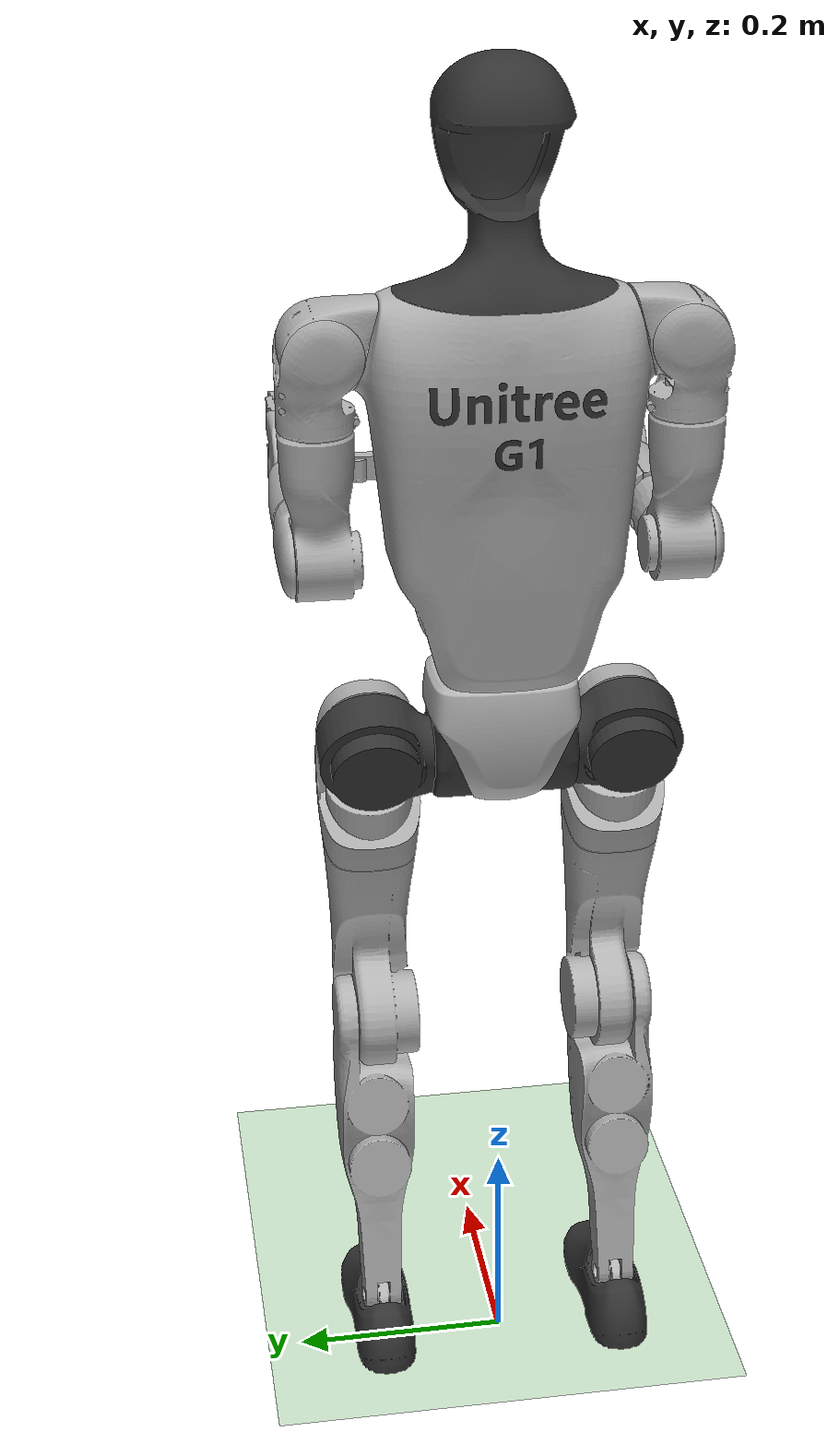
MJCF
<mujoco model="g1">
  <compiler angle="radian" meshdir="assets"/>

  <option integrator="RK4" iterations="50" solver="PGS" timestep="0.0166">
  </option>

  <size nconmax="200"/>

  <default>
    <default class="g1">
      <site rgba="1 0 0 1" size="0.01" group="5"/>
      <joint limited="true" damping="0.5" armature="0.01" frictionloss="0.1"/>
      <default class="arm_joint">
        <motor ctrlrange="-20 20" ctrllimited="true"/>
      </default>
      <default class="hand_joint">
        <motor ctrlrange="-0.7 0.7" ctrllimited="true"/>
      </default>
      <default class="visual">
        <geom group="2" type="mesh" contype="0" conaffinity="0" density="0" material="metallic"/>
      </default>
      <default class="collision">
        <geom group="3" type="mesh"/>
        <default class="foot">
          <geom type="sphere" size="0.001"/>
        </default>
      </default>
    </default>
  </default>

  <asset>
    <material name="metallic" rgba="0.7 0.7 0.7 1"/>
    <material name="black" rgba="0.2 0.2 0.2 1"/>
    <mesh file="pelvis.obj"/>
    <mesh file="pelvis_contour_link.obj"/>
    <mesh file="left_hip_pitch_link.obj"/>
    <mesh file="left_hip_roll_link.obj"/>
    <mesh file="left_hip_yaw_link.obj"/>
    <mesh file="left_knee_link.obj"/>
    <mesh file="left_ankle_pitch_link.obj"/>
    <mesh file="left_ankle_roll_link.obj"/>
    <mesh file="right_hip_pitch_link.obj"/>
    <mesh file="right_hip_roll_link.obj"/>
    <mesh file="right_hip_yaw_link.obj"/>
    <mesh file="right_knee_link.obj"/>
    <mesh file="right_ankle_pitch_link.obj"/>
    <mesh file="right_ankle_roll_link.obj"/>
    <mesh file="torso_link.obj"/>
    <mesh file="head_link.obj"/>
    <mesh file="left_shoulder_pitch_link.obj"/>
    <mesh file="left_shoulder_roll_link.obj"/>
    <mesh file="left_shoulder_yaw_link.obj"/>
    <mesh file="left_elbow_pitch_link.obj"/>
    <mesh file="left_elbow_roll_link.obj"/>
    <mesh file="right_shoulder_pitch_link.obj"/>
    <mesh file="right_shoulder_roll_link.obj"/>
    <mesh file="right_shoulder_yaw_link.obj"/>
    <mesh file="right_elbow_pitch_link.obj"/>
    <mesh file="right_elbow_roll_link.obj"/>
    <mesh file="logo_link.obj"/>
    <mesh file="left_palm_link.obj"/>
    <mesh file="left_zero_link.obj"/>
    <mesh file="left_one_link.obj"/>
    <mesh file="left_two_link.obj"/>
    <mesh file="left_three_link.obj"/>
    <mesh file="left_four_link.obj"/>
    <mesh file="left_five_link.obj"/>
    <mesh file="left_six_link.obj"/>
    <mesh file="right_palm_link.obj"/>
    <mesh file="right_zero_link.obj"/>
    <mesh file="right_one_link.obj"/>
    <mesh file="right_two_link.obj"/>
    <mesh file="right_three_link.obj"/>
    <mesh file="right_four_link.obj"/>
    <mesh file="right_five_link.obj"/>
    <mesh file="right_six_link.obj"/>
  </asset>

    <asset>
        <texture builtin="gradient" height="100" rgb1=".4 .5 .6" rgb2="0 0 0" type="skybox" width="100"/>
        <texture builtin="flat" height="1278" mark="cross" markrgb="1 1 1" name="texgeom" random="0.01" rgb1="0.8 0.6 0.4" rgb2="0.8 0.6 0.4" type="cube" width="127"/>
        <texture name="grid" type="2d" builtin="checker" rgb1=".1 .2 .3" rgb2=".2 .3 .4" width="300" height="300" mark="edge" markrgb=".2 .3 .4"/>
        <material name="MatPlane" reflectance="0.2" texrepeat="1 1" texuniform="true" texture="grid"/>
        <material name="geom" texture="texgeom" texuniform="true"/>
    </asset>
  <worldbody>
      <geom condim="3" friction="1 .1 .1" material="MatPlane" name="floor" pos="0 0 0" rgba="0.8 0.9 0.8 1" size="50 50 0.2" type="plane"/>
    <light name="spotlight" mode="targetbodycom" target="pelvis" pos="0 -6 4" cutoff="30"/>
    <body name="pelvis" pos="0 0 0.755" childclass="g1">
      <inertial pos="0 0 -0.07605" quat="1 0 -0.000405289 0" mass="2.86" diaginertia="0.0079143 0.0069837 0.0059404"/>
      <freejoint name="floating_base_joint"/>
      <light name="tracking" mode="trackcom" pos="0 0 2"/>
      <geom type="mesh" class="visual" mesh="pelvis"/>
      <geom type="mesh" class="visual" material="black" mesh="pelvis_contour_link"/>
      <body name="left_hip_pitch_link" pos="0 0.06445 -0.1027" quat="0.984807 0 -0.17365 0">
        <inertial pos="0.001962 0.049392 -0.000941" quat="0.420735 0.907025 -0.0155675 -0.00670646" mass="1.299"
          diaginertia="0.00138785 0.000955478 0.00086947"/>
        <joint name="left_hip_pitch_joint" axis="0 1 0" range="-2.35 3.05"/>
        <geom type="mesh" class="visual" material="black" mesh="left_hip_pitch_link"/>
        <body name="left_hip_roll_link" pos="0 0.0523 0">
          <inertial pos="0.024757 -0.001036 -0.086323" quat="0.977498 -0.00692636 0.210181 0.0165269" mass="1.446"
            diaginertia="0.00244106 0.00230425 0.00142899"/>
          <joint name="left_hip_roll_joint" axis="1 0 0" range="-0.26 2.53"/>
          <geom type="mesh" class="visual" mesh="left_hip_roll_link"/>
          <body name="left_hip_yaw_link" pos="0.01966 -0.0012139 -0.1241">
            <inertial pos="-0.053554 -0.011477 -0.14067" quat="0.645099 0.15885 0.202109 0.71956" mass="2.052"
              diaginertia="0.0114475 0.0107868 0.00214501"/>
            <joint name="left_hip_yaw_joint" axis="0 0 1" range="-2.75 2.75"/>
            <geom type="mesh" class="visual" mesh="left_hip_yaw_link"/>
            <body name="left_knee_link" pos="-0.078292 -0.0017335 -0.177225" quat="0.967714 0 0.252052 0">
              <inertial pos="0.005505 0.006534 -0.116629" quat="0.799234 -0.0128894 0.0354278 0.599836" mass="2.252"
                diaginertia="0.0127418 0.0124382 0.00192524"/>
              <joint name="left_knee_joint" axis="0 1 0" range="-0.33489 2.5449"/>
              <geom type="mesh" class="visual" mesh="left_knee_link"/>
              <geom size="0.015 0.075" pos="0.007 0.005 -0.15" type="cylinder" class="collision"/>
              <body name="left_ankle_pitch_link" pos="0 0.0040687 -0.30007" quat="0.99678 0 -0.0801788 0">
                <inertial pos="-0.007269 0 0.011137" quat="0.603053 0.369225 0.369225 0.603053" mass="0.074"
                  diaginertia="1.89e-05 1.40805e-05 6.9195e-06"/>
                <joint name="left_ankle_pitch_joint" axis="0 1 0" range="-0.68 0.73"/>
                <geom type="mesh" class="visual" mesh="left_ankle_pitch_link"/>
                <body name="left_ankle_roll_link" pos="0 0 -0.017558">
                  <site name="left_foot" pos="0 0 0"/>
                  <geom name="left_foot" pos="0 0 0" type="sphere" size="0.01" class="visual"/>
                  <inertial pos="0.024762 2e-05 -0.012526" quat="0.000771333 0.734476 0.000921291 0.678634" mass="0.391"
                    diaginertia="0.00110394 0.0010657 0.000149255"/>
                  <joint name="left_ankle_roll_joint" axis="1 0 0" range="-0.2618 0.2618"/>
                  <geom name="left_foot_mesh" type="mesh" class="visual" material="black" mesh="left_ankle_roll_link"/>
                  <geom name="left_foot_lheel" pos="-0.06 0.02 -0.03" class="foot"/>
                  <geom name="left_foot_rheel" pos="-0.06 -0.02 -0.03" class="foot"/>
                  <geom name="left_foot_ltoe" pos="0.13 0.02 -0.03" class="foot"/>
                  <geom name="left_foot_rtoe" pos="0.13 -0.02 -0.03" class="foot"/>
                </body>
              </body>
            </body>
          </body>
        </body>
      </body>
      <body name="right_hip_pitch_link" pos="0 -0.06445 -0.1027" quat="0.984807 0 -0.17365 0">
        <inertial pos="0.001962 -0.049392 -0.000941" quat="0.907025 0.420735 0.00670646 0.0155675" mass="1.299"
          diaginertia="0.00138785 0.000955478 0.00086947"/>
        <joint name="right_hip_pitch_joint" axis="0 1 0" range="-2.35 3.05"/>
        <geom type="mesh" class="visual" material="black" mesh="right_hip_pitch_link"/>
        <body name="right_hip_roll_link" pos="0 -0.0523 0">
          <inertial pos="0.024757 0.001036 -0.086323" quat="0.977498 0.00692636 0.210181 -0.0165269" mass="1.446"
            diaginertia="0.00244106 0.00230425 0.00142899"/>
          <joint name="right_hip_roll_joint" axis="1 0 0" range="-2.53 0.26"/>
          <geom type="mesh" class="visual" mesh="right_hip_roll_link"/>
          <body name="right_hip_yaw_link" pos="0.01966 0.0012139 -0.1241">
            <inertial pos="-0.053554 0.011477 -0.14067" quat="0.71956 0.202109 0.15885 0.645099" mass="2.052"
              diaginertia="0.0114475 0.0107868 0.00214501"/>
            <joint name="right_hip_yaw_joint" axis="0 0 1" range="-2.75 2.75"/>
            <geom type="mesh" class="visual" mesh="right_hip_yaw_link"/>
            <body name="right_knee_link" pos="-0.078292 0.0017335 -0.177225" quat="0.967714 0 0.252052 0">
              <inertial pos="0.005505 -0.006534 -0.116629" quat="0.599836 0.0354278 -0.0128894 0.799234" mass="2.252"
                diaginertia="0.0127418 0.0124382 0.00192524"/>
              <joint name="right_knee_joint" axis="0 1 0" range="-0.33489 2.5449"/>
              <geom type="mesh" class="visual" mesh="right_knee_link"/>
              <geom size="0.015 0.075" pos="0.007 -0.005 -0.15" type="cylinder" class="collision"/>
              <body name="right_ankle_pitch_link" pos="0 -0.0040687 -0.30007" quat="0.99678 0 -0.0801788 0">
                <inertial pos="-0.007269 0 0.011137" quat="0.603053 0.369225 0.369225 0.603053" mass="0.074"
                  diaginertia="1.89e-05 1.40805e-05 6.9195e-06"/>
                <joint name="right_ankle_pitch_joint" axis="0 1 0" range="-0.68 0.73"/>
                <geom type="mesh" class="visual" mesh="right_ankle_pitch_link"/>
                <body name="right_ankle_roll_link" pos="0 0 -0.017558">
                  <site name="right_foot" pos="0 0 0"/>
                  <geom name="right_foot" pos="0 0 0" type="sphere" size="0.01" class="visual"/>
                  <inertial pos="0.024762 -2e-05 -0.012526" quat="-0.000771333 0.734476 -0.000921291 0.678634"
                    mass="0.391" diaginertia="0.00110394 0.0010657 0.000149255"/>
                  <joint name="right_ankle_roll_joint" axis="1 0 0" range="-0.2618 0.2618"/>
                  <geom name="right_foot_mesh" type="mesh" class="visual" material="black" mesh="right_ankle_roll_link"/>
                  <geom name="right_foot_lheel" pos="-0.06 0.02 -0.03" class="foot"/>
                  <geom name="right_foot_rheel" pos="-0.06 -0.02 -0.03" class="foot"/>
                  <geom name="right_foot_ltoe" pos="0.13 0.02 -0.03" class="foot"/>
                  <geom name="right_foot_rtoe" pos="0.13 -0.02 -0.03" class="foot"/>
                </body>
              </body>
            </body>
          </body>
        </body>
      </body>
      <body name="torso_link">
        <inertial pos="0.00187791 0.00229457 0.208747" quat="0.999957 0.00624375 -0.00636707 -0.0026338" mass="7.52036"
          diaginertia="0.12848 0.111753 0.0350394"/>
        <site name="imu" pos="-0.04233868314 0.00166 0.152067"/>
        <site name="head" pos="0 0 0.5"/>
        <joint name="torso_joint" axis="0 0 1" range="-2.618 2.618"/>
        <geom type="mesh" class="visual" mesh="torso_link"/>
        <geom type="mesh" class="visual" material="black" mesh="head_link"/>
        <geom type="mesh" class="visual" material="black" mesh="logo_link"/>
        <body name="left_shoulder_pitch_link" pos="-0.0025 0.10396 0.25928" quat="0.990268 0.139172 0 0">
          <inertial pos="-0.001431 0.048811 0.001304" quat="0.786417 0.588396 -0.180543 0.0523639" mass="0.713"
            diaginertia="0.000466421 0.000440181 0.000410999"/>
          <joint name="left_shoulder_pitch_joint" axis="0 1 0" range="-2.9671 2.7925"/>
          <geom type="mesh" class="visual" mesh="left_shoulder_pitch_link"/>
          <body name="left_shoulder_roll_link" pos="0 0.052 0" quat="0.990268 -0.139172 0 0">
            <inertial pos="-0.003415 0.006955 -0.064598" quat="0.70683 0.0105364 0.00575207 0.707282" mass="0.642"
              diaginertia="0.000683514 0.000616029 0.000372857"/>
            <joint name="left_shoulder_roll_joint" axis="1 0 0" range="-1.5882 2.2515"/>
            <geom type="mesh" class="visual" mesh="left_shoulder_roll_link"/>
            <geom size="0.03 0.015" pos="-0.004 0.006 -0.053" type="cylinder" class="collision"/>
            <body name="left_shoulder_yaw_link" pos="-0.00354 0.0062424 -0.1032">
              <inertial pos="0.000375 -0.00444 -0.072374" quat="0.903834 -0.0374183 0.00985482 0.42613" mass="0.713"
                diaginertia="0.000977874 0.000964661 0.000379065"/>
              <joint name="left_shoulder_yaw_joint" axis="0 0 1" range="-2.618 2.618"/>
              <geom type="mesh" class="visual" mesh="left_shoulder_yaw_link"/>
              <body name="left_elbow_pitch_link" pos="0 0.00189 -0.0855">
                <inertial pos="0.064497 0.002873 0" quat="0.582347 0.582495 0.400893 0.401069" mass="0.601"
                  diaginertia="0.00049549 0.0004712 0.00025371"/>
                <joint name="left_elbow_pitch_joint" axis="0 1 0" range="-0.2268 3.4208"/>
                <geom type="mesh" class="visual" mesh="left_elbow_pitch_link"/>
                <body name="left_elbow_roll_link" pos="0.1 0 0">
                  <inertial pos="0.133814 0.00147121 0.000265832" quat="0.496781 0.497877 0.498782 0.506502"
                    mass="0.50826" diaginertia="0.00239763 0.00226639 0.000285577"/>
                  <joint name="left_elbow_roll_joint" axis="1 0 0" range="-2.0943 2.0943"/>
                  <geom type="mesh" class="visual" mesh="left_elbow_roll_link"/>
                  <geom pos="0.12 0 0" type="mesh" class="visual" mesh="left_palm_link"/>
                  <body name="left_zero_link" pos="0.17 0 0">
                    <inertial pos="-0.0260466 -0.00877511 1.08605e-05" quat="0.59241 0.381376 -0.592953 0.389884"
                      mass="0.0509893" diaginertia="8.68047e-06 7.23365e-06 4.58058e-06"/>
                    <joint name="left_zero_joint" axis="0 1 0" range="-0.523598 0.523598"/>
                    <geom type="mesh" class="visual" mesh="left_zero_link"/>
                    <site name="left_palm" pos="0 0 0"/>
                    <geom name="left_hand" pos="0 0 0" type="sphere" size="0.01" class="visual"/>
                    <body name="left_one_link" pos="-0.026525 -0.0188 -5e-05">
                      <inertial pos="-0.00181538 -0.0327057 -0.000185871" quat="0.701646 0.698199 0.0817825 -0.116289"
                        mass="0.047762" diaginertia="8.03051e-06 7.8455e-06 3.65282e-06"/>
                      <joint name="left_one_joint" axis="0 0 1" range="-1 1.2"/>
                      <geom type="mesh" class="visual" mesh="left_one_link"/>
                      <geom size="0.01 0.015 0.01" pos="-0.001 -0.032 0" type="box" class="collision"/>
                      <body name="left_two_link" pos="0 -0.0431 0">
                        <inertial pos="-0.00135257 -0.0237591 -0.000119669"
                          quat="0.717995 0.695316 -0.0180122 -0.0263741" mass="0.0138584"
                          diaginertia="2.55338e-06 2.04399e-06 9.3995e-07"/>
                        <joint name="left_two_joint" axis="0 0 1" range="0 1.84"/>
                        <geom type="mesh" class="visual" mesh="left_two_link"/>
                      </body>
                    </body>
                  </body>
                  <body name="left_three_link" pos="0.205 0.004 0.02395">
                    <inertial pos="0.0362561 -0.0015725 0.000269899" quat="0.540443 0.459072 0.5397 0.45376"
                      mass="0.0488469" diaginertia="8.91742e-06 8.64873e-06 3.8319e-06"/>
                    <joint name="left_three_joint" axis="0 0 1" range="-1.84 0.3"/>
                    <geom type="mesh" class="visual" mesh="left_three_link"/>
                    <body name="left_four_link" pos="0.0471 -0.0036 0">
                      <inertial pos="0.0237591 0.00135257 0.000119669" quat="0.478926 0.48905 0.526348 0.504399"
                        mass="0.0138584" diaginertia="2.55338e-06 2.04399e-06 9.3995e-07"/>
                      <joint name="left_four_joint" axis="0 0 1" range="-1.84 0"/>
                      <geom type="mesh" class="visual" mesh="left_four_link"/>
                    </body>
                  </body>
                  <body name="left_five_link" pos="0.205 0.004 -0.02395">
                    <inertial pos="0.0362561 -0.0015725 0.000269899" quat="0.540443 0.459072 0.5397 0.45376"
                      mass="0.0488469" diaginertia="8.91742e-06 8.64873e-06 3.8319e-06"/>
                    <joint name="left_five_joint" axis="0 0 1" range="-1.84 0.3"/>
                    <geom type="mesh" class="visual" mesh="left_five_link"/>
                    <body name="left_six_link" pos="0.0471 -0.0036 0">
                      <inertial pos="0.0237591 0.00135257 0.000119669" quat="0.478926 0.48905 0.526348 0.504399"
                        mass="0.0138584" diaginertia="2.55338e-06 2.04399e-06 9.3995e-07"/>
                      <joint name="left_six_joint" axis="0 0 1" range="-1.84 0"/>
                      <geom type="mesh" class="visual" mesh="left_six_link"/>
                    </body>
                  </body>
                </body>
              </body>
            </body>
          </body>
        </body>
        <body name="right_shoulder_pitch_link" pos="-0.0025 -0.10396 0.25928" quat="0.990268 -0.139172 0 0">
          <inertial pos="-0.001431 -0.048811 0.001304" quat="0.588396 0.786417 -0.0523639 0.180543" mass="0.713"
            diaginertia="0.000466421 0.000440181 0.000410999"/>
          <joint name="right_shoulder_pitch_joint" axis="0 1 0" range="-2.9671 2.7925"/>
          <geom type="mesh" class="visual" mesh="right_shoulder_pitch_link"/>
          <body name="right_shoulder_roll_link" pos="0 -0.052 0" quat="0.990268 0.139172 0 0">
            <inertial pos="-0.003415 -0.006955 -0.064598" quat="0.707282 0.00575207 0.0105364 0.70683" mass="0.642"
              diaginertia="0.000683514 0.000616029 0.000372857"/>
            <joint name="right_shoulder_roll_joint" axis="1 0 0" range="-2.2515 1.5882"/>
            <geom type="mesh" class="visual" mesh="right_shoulder_roll_link"/>
            <geom size="0.03 0.015" pos="-0.004 -0.006 -0.053" type="cylinder" class="collision"/>
            <body name="right_shoulder_yaw_link" pos="-0.00354 -0.0062424 -0.1032">
              <inertial pos="0.000375 0.00444 -0.072374" quat="0.42613 0.00985482 -0.0374183 0.903834" mass="0.713"
                diaginertia="0.000977874 0.000964661 0.000379065"/>
              <joint name="right_shoulder_yaw_joint" axis="0 0 1" range="-2.618 2.618"/>
              <geom type="mesh" class="visual" mesh="right_shoulder_yaw_link"/>
              <body name="right_elbow_pitch_link" pos="0 -0.00189 -0.0855">
                <inertial pos="0.064497 -0.002873 0" quat="0.401069 0.400893 0.582495 0.582347" mass="0.601"
                  diaginertia="0.00049549 0.0004712 0.00025371"/>
                <joint name="right_elbow_pitch_joint" axis="0 1 0" range="-0.2268 3.4208"/>
                <geom type="mesh" class="visual" mesh="right_elbow_pitch_link"/>
                <body name="right_elbow_roll_link" pos="0.1 0 0">
                  <inertial pos="0.133814 -0.00147121 0.000265832" quat="0.506502 0.498782 0.497877 0.496781"
                    mass="0.50826" diaginertia="0.00239763 0.00226639 0.000285577"/>
                  <joint name="right_elbow_roll_joint" axis="1 0 0" range="-2.0943 2.0943"/>
                  <geom type="mesh" class="visual" mesh="right_elbow_roll_link"/>
                  <geom pos="0.12 0 0" type="mesh" class="visual" mesh="right_palm_link"/>
                  <body name="right_zero_link" pos="0.17 0 0">
                    <inertial pos="-0.0260466 0.00877511 1.08605e-05" quat="0.381376 0.59241 -0.389884 0.592953"
                      mass="0.0509893" diaginertia="8.68047e-06 7.23365e-06 4.58058e-06"/>
                    <joint name="right_zero_joint" axis="0 1 0" range="-0.523598 0.523598"/>
                    <geom type="mesh" class="visual" mesh="right_zero_link"/>
                    <site name="right_palm" pos="0 0 0"/>
                    <geom name="right_hand" pos="0 0 0" type="sphere" size="0.01" class="visual"/>
                    <body name="right_one_link" pos="-0.026525 0.0188 -5e-05">
                      <inertial pos="-0.00181538 0.0327057 -0.000185871" quat="0.698199 0.701646 0.116289 -0.0817825"
                        mass="0.047762" diaginertia="8.03051e-06 7.8455e-06 3.65282e-06"/>
                      <joint name="right_one_joint" axis="0 0 1" range="-1.2 1"/>
                      <geom type="mesh" class="visual" mesh="right_one_link"/>
                      <geom size="0.01 0.015 0.01" pos="-0.001 0.032 0" type="box" class="collision"/>
                      <body name="right_two_link" pos="0 0.0431 0">
                        <inertial pos="-0.00135257 0.0237591 -0.000119669" quat="0.695316 0.717995 0.0263741 0.0180122"
                          mass="0.0138584" diaginertia="2.55338e-06 2.04399e-06 9.3995e-07"/>
                        <joint name="right_two_joint" axis="0 0 1" range="-1.84 0"/>
                        <geom type="mesh" class="visual" mesh="right_two_link"/>
                      </body>
                    </body>
                  </body>
                  <body name="right_three_link" pos="0.205 -0.004 0.02395">
                    <inertial pos="0.0362561 0.0015725 0.000269899" quat="0.45376 0.5397 0.459072 0.540443"
                      mass="0.0488469" diaginertia="8.91742e-06 8.64873e-06 3.8319e-06"/>
                    <joint name="right_three_joint" axis="0 0 1" range="-0.3 1.84"/>
                    <geom type="mesh" class="visual" mesh="right_three_link"/>
                    <body name="right_four_link" pos="0.0471 0.0036 0">
                      <inertial pos="0.0237591 -0.00135257 0.000119669" quat="0.504399 0.526348 0.48905 0.478926"
                        mass="0.0138584" diaginertia="2.55338e-06 2.04399e-06 9.3995e-07"/>
                      <joint name="right_four_joint" axis="0 0 1" range="0 1.84"/>
                      <geom type="mesh" class="visual" mesh="right_four_link"/>
                    </body>
                  </body>
                  <body name="right_five_link" pos="0.205 -0.004 -0.02395">
                    <inertial pos="0.0362561 0.0015725 0.000269899" quat="0.45376 0.5397 0.459072 0.540443"
                      mass="0.0488469" diaginertia="8.91742e-06 8.64873e-06 3.8319e-06"/>
                    <joint name="right_five_joint" axis="0 0 1" range="-0.3 1.84"/>
                    <geom type="mesh" class="visual" mesh="right_five_link"/>
                    <body name="right_six_link" pos="0.0471 0.0036 0">
                      <inertial pos="0.0237591 -0.00135257 0.000119669" quat="0.504399 0.526348 0.48905 0.478926"
                        mass="0.0138584" diaginertia="2.55338e-06 2.04399e-06 9.3995e-07"/>
                      <joint name="right_six_joint" axis="0 0 1" range="0 1.84"/>
                      <geom type="mesh" class="visual" mesh="right_six_link"/>
                    </body>
                  </body>
                </body>
              </body>
            </body>
          </body>
        </body>
      </body>
    </body>
  </worldbody>

  <actuator>
    <motor class="g1" name="left_hip_pitch_joint" joint="left_hip_pitch_joint" ctrlrange="-88 88" ctrllimited="true"/>
    <motor class="g1" name="left_hip_roll_joint" joint="left_hip_roll_joint" ctrlrange="-88 88" ctrllimited="true"/>
    <motor class="g1" name="left_hip_yaw_joint" joint="left_hip_yaw_joint" ctrlrange="-88 88" ctrllimited="true"/>
    <motor class="g1" name="left_knee_joint" joint="left_knee_joint" ctrlrange="-139 139" ctrllimited="true"/>
    <motor class="g1" name="left_ankle_pitch_joint" joint="left_ankle_pitch_joint" ctrlrange="-40 40" ctrllimited="true"/>
    <motor class="g1" name="left_ankle_roll_joint" joint="left_ankle_roll_joint" ctrlrange="-40 40" ctrllimited="true"/>

    <motor class="g1" name="right_hip_pitch_joint" joint="right_hip_pitch_joint" ctrlrange="-88 88" ctrllimited="true"/>
    <motor class="g1" name="right_hip_roll_joint" joint="right_hip_roll_joint" ctrlrange="-88 88" ctrllimited="true"/>
    <motor class="g1" name="right_hip_yaw_joint" joint="right_hip_yaw_joint" ctrlrange="-88 88" ctrllimited="true"/>
    <motor class="g1" name="right_knee_joint" joint="right_knee_joint" ctrlrange="-139 139" ctrllimited="true"/>
    <motor class="g1" name="right_ankle_pitch_joint" joint="right_ankle_pitch_joint" ctrlrange="-40 40" ctrllimited="true"/>
    <motor class="g1" name="right_ankle_roll_joint" joint="right_ankle_roll_joint" ctrlrange="-40 40" ctrllimited="true"/>

    <motor class="g1" name="torso_joint" joint="torso_joint" ctrlrange="-88 88" ctrllimited="true"/>

    <motor class="arm_joint" name="left_shoulder_pitch_joint" joint="left_shoulder_pitch_joint"/>
    <motor class="arm_joint" name="left_shoulder_roll_joint" joint="left_shoulder_roll_joint"/>
    <motor class="arm_joint" name="left_shoulder_yaw_joint" joint="left_shoulder_yaw_joint"/>
    <motor class="arm_joint" name="left_elbow_pitch_joint" joint="left_elbow_pitch_joint"/>
    <motor class="arm_joint" name="left_elbow_roll_joint" joint="left_elbow_roll_joint"/>

    <motor class="arm_joint" name="right_shoulder_pitch_joint" joint="right_shoulder_pitch_joint"/>
    <motor class="arm_joint" name="right_shoulder_roll_joint" joint="right_shoulder_roll_joint"/>
    <motor class="arm_joint" name="right_shoulder_yaw_joint" joint="right_shoulder_yaw_joint"/>
    <motor class="arm_joint" name="right_elbow_pitch_joint" joint="right_elbow_pitch_joint"/>
    <motor class="arm_joint" name="right_elbow_roll_joint" joint="right_elbow_roll_joint"/>

    <motor class="hand_joint" name="left_zero_joint" joint="left_zero_joint"/>
    <motor class="hand_joint" name="left_one_joint" joint="left_one_joint"/>
    <motor class="hand_joint" name="left_two_joint" joint="left_two_joint"/>
    <motor class="hand_joint" name="left_three_joint" joint="left_three_joint"/>
    <motor class="hand_joint" name="left_four_joint" joint="left_four_joint"/>
    <motor class="hand_joint" name="left_five_joint" joint="left_five_joint"/>
    <motor class="hand_joint" name="left_six_joint" joint="left_six_joint"/>

    <motor class="hand_joint" name="right_zero_joint" joint="right_zero_joint"/>
    <motor class="hand_joint" name="right_one_joint" joint="right_one_joint"/>
    <motor class="hand_joint" name="right_two_joint" joint="right_two_joint"/>
    <motor class="hand_joint" name="right_three_joint" joint="right_three_joint"/>
    <motor class="hand_joint" name="right_four_joint" joint="right_four_joint"/>
    <motor class="hand_joint" name="right_five_joint" joint="right_five_joint"/>
    <motor class="hand_joint" name="right_six_joint" joint="right_six_joint"/>
  </actuator>

  <keyframe>
    <key name="stand"
      qpos="
      0 0 0.75
      1 0 0 0
      0 0 0 0 0 0
      0 0 0 0 0 0
      0
      0 0 0 0 0
      0 0 0 0 0
      0 0 0 0 0 0 0
      0 0 0 0 0 0 0"/>
  </keyframe>
</mujoco>
